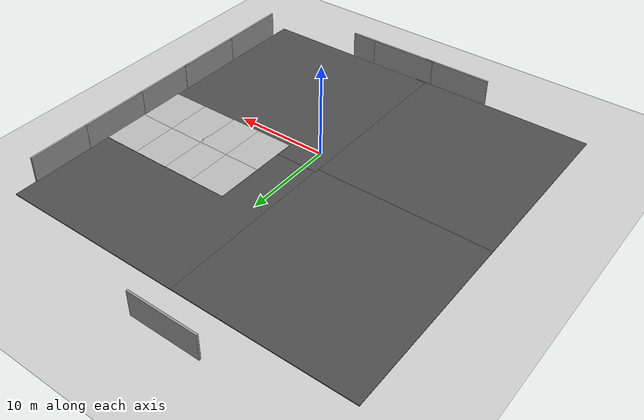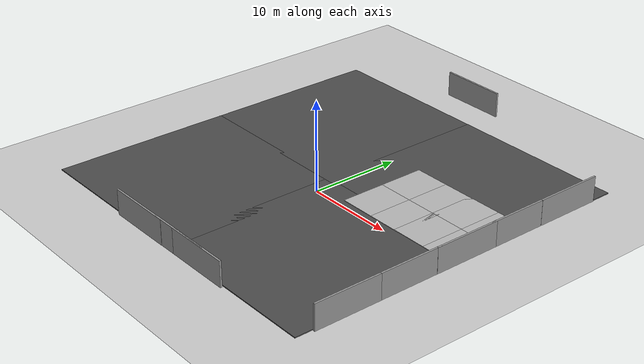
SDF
<sdf version="1.6">
 <world name="default">
  <model name="ground_plane">
   <static>1</static>
   <link name="link">
    <collision name="collision">
     <geometry><plane><normal>0 0 1</normal><size>100 100</size></plane></geometry>
     <surface><friction><ode><mu>100</mu><mu2>50</mu2></ode></friction></surface>
    </collision>
    <visual name="visual">
     <cast_shadows>0</cast_shadows>
     <geometry><plane><normal>0 0 1</normal><size>100 100</size></plane></geometry>
     <material>
      <script><uri>file://media/materials/scripts/gazebo.material</uri><name>Gazebo/Grey</name></script>
     </material>
    </visual>
   </link>
  </model>
  <model name="asphalt_plane">
   <static>1</static>
   <link name="link">
    <collision name="collision">
     <geometry><box><size>20 20 0.1</size></box></geometry>
     <surface><friction><ode><mu>100</mu><mu2>50</mu2></ode></friction></surface>
    </collision>
    <visual name="visual">
     <cast_shadows>0</cast_shadows>
     <geometry><box><size>20 20 0.1</size></box></geometry>
     <material>
      <script>
       <uri>model://asphalt_plane/materials/scripts</uri>
       <uri>model://asphalt_plane/materials/textures</uri>
       <name>vrc/asphalt</name>
      </script>
     </material>
    </visual>
   </link>
   <pose>-10.1692 -7.43707 0 0 -0 0</pose>
  </model>
  <model name="asphalt_plane_clone">
   <static>1</static>
   <link name="link">
    <collision name="collision">
     <geometry><box><size>20 20 0.1</size></box></geometry>
     <surface><friction><ode><mu>100</mu><mu2>50</mu2></ode></friction></surface>
    </collision>
    <visual name="visual">
     <cast_shadows>0</cast_shadows>
     <geometry><box><size>20 20 0.1</size></box></geometry>
     <material>
      <script>
       <uri>model://asphalt_plane/materials/scripts</uri>
       <uri>model://asphalt_plane/materials/textures</uri>
       <name>vrc/asphalt</name>
      </script>
     </material>
    </visual>
   </link>
   <pose>-10.1603 12.171 0 0 -0 0</pose>
  </model>
  <model name="asphalt_plane_clone_clone">
   <static>1</static>
   <link name="link">
    <collision name="collision">
     <geometry><box><size>20 20 0.1</size></box></geometry>
     <surface><friction><ode><mu>100</mu><mu2>50</mu2></ode></friction></surface>
    </collision>
    <visual name="visual">
     <cast_shadows>0</cast_shadows>
     <geometry><box><size>20 20 0.1</size></box></geometry>
     <material>
      <script>
       <uri>model://asphalt_plane/materials/scripts</uri>
       <uri>model://asphalt_plane/materials/textures</uri>
       <name>vrc/asphalt</name>
      </script>
     </material>
    </visual>
   </link>
   <pose>8.71597 12.1785 0 0 -0 0</pose>
  </model>
  <model name="asphalt_plane_clone_clone_0">
   <static>1</static>
   <link name="link">
    <collision name="collision">
     <geometry><box><size>20 20 0.1</size></box></geometry>
     <surface><friction><ode><mu>100</mu><mu2>50</mu2></ode></friction></surface>
    </collision>
    <visual name="visual">
     <cast_shadows>0</cast_shadows>
     <geometry><box><size>20 20 0.1</size></box></geometry>
     <material>
      <script>
       <uri>model://asphalt_plane/materials/scripts</uri>
       <uri>model://asphalt_plane/materials/textures</uri>
       <name>vrc/asphalt</name>
      </script>
     </material>
    </visual>
   </link>
   <pose>8.60996 -7.34898 0 0 -0 0</pose>
  </model>
  <model name="grey_wall">
   <static>1</static>
   <link name="link">
    <pose>0 0 1.4 0 -0 0</pose>
    <collision name="collision"><geometry><box><size>7.5 0.2 2.8</size></box></geometry></collision>
    <visual name="visual">
     <cast_shadows>0</cast_shadows>
     <geometry><box><size>7.5 0.2 2.8</size></box></geometry>
     <material>
      <script>
       <uri>model://grey_wall/materials/scripts</uri>
       <uri>model://grey_wall/materials/textures</uri>
       <name>vrc/grey_wall</name>
      </script>
     </material>
    </visual>
   </link>
   <pose>-4.8114 -17.6626 0 0 -0 0</pose>
  </model>
  <model name="grey_wall_clone">
   <static>1</static>
   <link name="link">
    <pose>0 0 1.4 0 -0 0</pose>
    <collision name="collision"><geometry><box><size>7.5 0.2 2.8</size></box></geometry></collision>
    <visual name="visual">
     <cast_shadows>0</cast_shadows>
     <geometry><box><size>7.5 0.2 2.8</size></box></geometry>
     <material>
      <script>
       <uri>model://grey_wall/materials/scripts</uri>
       <uri>model://grey_wall/materials/textures</uri>
       <name>vrc/grey_wall</name>
      </script>
     </material>
    </visual>
   </link>
   <pose>1.84642 -17.6367 0 0 -0 0</pose>
  </model>
  <model name="grey_wall_clone_0">
   <static>1</static>
   <link name="link">
    <pose>0 0 1.4 0 -0 0</pose>
    <collision name="collision"><geometry><box><size>7.5 0.2 2.8</size></box></geometry></collision>
    <visual name="visual">
     <cast_shadows>0</cast_shadows>
     <geometry><box><size>7.5 0.2 2.8</size></box></geometry>
     <material>
      <script>
       <uri>model://grey_wall/materials/scripts</uri>
       <uri>model://grey_wall/materials/textures</uri>
       <name>vrc/grey_wall</name>
      </script>
     </material>
    </visual>
   </link>
   <pose>4.62088 -17.6372 0 0 -0 0</pose>
  </model>
  <model name="grey_wall_clone_clone">
   <static>1</static>
   <link name="link">
    <pose>0 0 1.4 0 -0 0</pose>
    <collision name="collision"><geometry><box><size>7.5 0.2 2.8</size></box></geometry></collision>
    <visual name="visual">
     <cast_shadows>0</cast_shadows>
     <geometry><box><size>7.5 0.2 2.8</size></box></geometry>
     <material>
      <script>
       <uri>model://grey_wall/materials/scripts</uri>
       <uri>model://grey_wall/materials/textures</uri>
       <name>vrc/grey_wall</name>
      </script>
     </material>
    </visual>
   </link>
   <pose>-4.48764 26.0166 0 0 -0 0</pose>
  </model>
  <model name="grey_wall_clone_clone_clone">
   <static>1</static>
   <link name="link">
    <pose>0 0 1.4 0 -0 0</pose>
    <collision name="collision"><geometry><box><size>7.5 0.2 2.8</size></box></geometry></collision>
    <visual name="visual">
     <cast_shadows>0</cast_shadows>
     <geometry><box><size>7.5 0.2 2.8</size></box></geometry>
     <material>
      <script>
       <uri>model://grey_wall/materials/scripts</uri>
       <uri>model://grey_wall/materials/textures</uri>
       <name>vrc/grey_wall</name>
      </script>
     </material>
    </visual>
   </link>
   <pose>18.7544 16.0387 0 0 0 -1.56734</pose>
  </model>
  <model name="grey_wall_clone_clone_clone_clone">
   <static>1</static>
   <link name="link">
    <pose>0 0 1.4 0 -0 0</pose>
    <collision name="collision"><geometry><box><size>7.5 0.2 2.8</size></box></geometry></collision>
    <visual name="visual">
     <cast_shadows>0</cast_shadows>
     <geometry><box><size>7.5 0.2 2.8</size></box></geometry>
     <material>
      <script>
       <uri>model://grey_wall/materials/scripts</uri>
       <uri>model://grey_wall/materials/textures</uri>
       <name>vrc/grey_wall</name>
      </script>
     </material>
    </visual>
   </link>
   <pose>18.767 9.41754 0 0 0 -1.56734</pose>
  </model>
  <model name="grey_wall_clone_clone_clone_clone_0">
   <static>1</static>
   <link name="link">
    <pose>0 0 1.4 0 -0 0</pose>
    <collision name="collision"><geometry><box><size>7.5 0.2 2.8</size></box></geometry></collision>
    <visual name="visual">
     <cast_shadows>0</cast_shadows>
     <geometry><box><size>7.5 0.2 2.8</size></box></geometry>
     <material>
      <script>
       <uri>model://grey_wall/materials/scripts</uri>
       <uri>model://grey_wall/materials/textures</uri>
       <name>vrc/grey_wall</name>
      </script>
     </material>
    </visual>
   </link>
   <pose>18.7963 2.45369 0 0 0 -1.56734</pose>
  </model>
  <model name="grey_wall_clone_clone_clone_clone_1">
   <static>1</static>
   <link name="link">
    <pose>0 0 1.4 0 -0 0</pose>
    <collision name="collision"><geometry><box><size>7.5 0.2 2.8</size></box></geometry></collision>
    <visual name="visual">
     <cast_shadows>0</cast_shadows>
     <geometry><box><size>7.5 0.2 2.8</size></box></geometry>
     <material>
      <script>
       <uri>model://grey_wall/materials/scripts</uri>
       <uri>model://grey_wall/materials/textures</uri>
       <name>vrc/grey_wall</name>
      </script>
     </material>
    </visual>
   </link>
   <pose>18.8058 -4.41342 0 0 0 -1.56734</pose>
  </model>
  <model name="grey_wall_clone_clone_clone_clone_2">
   <static>1</static>
   <link name="link">
    <pose>0 0 1.4 0 -0 0</pose>
    <collision name="collision"><geometry><box><size>7.5 0.2 2.8</size></box></geometry></collision>
    <visual name="visual">
     <cast_shadows>0</cast_shadows>
     <geometry><box><size>7.5 0.2 2.8</size></box></geometry>
     <material>
      <script>
       <uri>model://grey_wall/materials/scripts</uri>
       <uri>model://grey_wall/materials/textures</uri>
       <name>vrc/grey_wall</name>
      </script>
     </material>
    </visual>
   </link>
   <pose>18.8343 -11.7301 0 0 0 -1.56734</pose>
  </model>
  <model name="mud_box">
   <static>1</static>
   <link name="link">
    <collision name="collision"><geometry><box><size>8 10 0.2</size></box></geometry></collision>
    <visual name="visual_1">
     <pose>-2 2.5 0 0 -0 0</pose>
     <cast_shadows>0</cast_shadows>
     <geometry><box><size>4 5 0.2</size></box></geometry>
     <material>
      <script>
       <uri>model://mud_box/materials/scripts</uri>
       <uri>model://mud_box/materials/textures</uri>
       <name>vrc/mud</name>
      </script>
     </material>
    </visual>
    <visual name="visual_2">
     <pose>2 2.5 0 0 -0 0</pose>
     <cast_shadows>0</cast_shadows>
     <geometry><box><size>4 5 0.2</size></box></geometry>
     <material>
      <script>
       <uri>model://mud_box/materials/scripts</uri>
       <uri>model://mud_box/materials/textures</uri>
       <name>vrc/mud</name>
      </script>
     </material>
    </visual>
    <visual name="visual_3">
     <pose>2 -2.5 0 0 -0 0</pose>
     <cast_shadows>0</cast_shadows>
     <geometry><box><size>4 5 0.2</size></box></geometry>
     <material>
      <script>
       <uri>model://mud_box/materials/scripts</uri>
       <uri>model://mud_box/materials/textures</uri>
       <name>vrc/mud</name>
      </script>
     </material>
    </visual>
    <visual name="visual_4">
     <pose>-2 -2.5 0 0 -0 0</pose>
     <cast_shadows>0</cast_shadows>
     <geometry><box><size>4 5 0.2</size></box></geometry>
     <material>
      <script>
       <uri>model://mud_box/materials/scripts</uri>
       <uri>model://mud_box/materials/textures</uri>
       <name>vrc/mud</name>
      </script>
     </material>
    </visual>
   </link>
   <pose>14.6137 5.86275 0 0 -0 0</pose>
  </model>
  <model name="mud_box_clone">
   <static>1</static>
   <link name="link">
    <collision name="collision"><geometry><box><size>8 10 0.2</size></box></geometry></collision>
    <visual name="visual_1">
     <pose>-2 2.5 0 0 -0 0</pose>
     <cast_shadows>0</cast_shadows>
     <geometry><box><size>4 5 0.2</size></box></geometry>
     <material>
      <script>
       <uri>model://mud_box/materials/scripts</uri>
       <uri>model://mud_box/materials/textures</uri>
       <name>vrc/mud</name>
      </script>
     </material>
    </visual>
    <visual name="visual_2">
     <pose>2 2.5 0 0 -0 0</pose>
     <cast_shadows>0</cast_shadows>
     <geometry><box><size>4 5 0.2</size></box></geometry>
     <material>
      <script>
       <uri>model://mud_box/materials/scripts</uri>
       <uri>model://mud_box/materials/textures</uri>
       <name>vrc/mud</name>
      </script>
     </material>
    </visual>
    <visual name="visual_3">
     <pose>2 -2.5 0 0 -0 0</pose>
     <cast_shadows>0</cast_shadows>
     <geometry><box><size>4 5 0.2</size></box></geometry>
     <material>
      <script>
       <uri>model://mud_box/materials/scripts</uri>
       <uri>model://mud_box/materials/textures</uri>
       <name>vrc/mud</name>
      </script>
     </material>
    </visual>
    <visual name="visual_4">
     <pose>-2 -2.5 0 0 -0 0</pose>
     <cast_shadows>0</cast_shadows>
     <geometry><box><size>4 5 0.2</size></box></geometry>
     <material>
      <script>
       <uri>model://mud_box/materials/scripts</uri>
       <uri>model://mud_box/materials/textures</uri>
       <name>vrc/mud</name>
      </script>
     </material>
    </visual>
   </link>
   <pose>7.23773 5.83307 0 0 -0 0</pose>
  </model>
  <light name="sun" type="directional">
   <pose>0 0 10 0 -0 0</pose>
   <diffuse>0.8 0.8 0.8 1</diffuse>
   <specular>0.2 0.2 0.2 1</specular>
   <attenuation>
    <range>1000</range>
    <constant>0.9</constant>
    <linear>0.01</linear>
    <quadratic>0.001</quadratic>
   </attenuation>
   <direction>-0.5 0.1 -0.9</direction>
  </light>
  <gravity>0 0 -9.8</gravity>
  <magnetic_field>6e-06 2.3e-05 -4.2e-05</magnetic_field>
  <atmosphere type="adiabatic"/>
  <physics name="default_physics" default="0" type="ode">
   <max_step_size>0.001</max_step_size>
   <real_time_factor>1</real_time_factor>
   <real_time_update_rate>1000</real_time_update_rate>
  </physics>
  <scene><ambient>0.4 0.4 0.4 1</ambient><background>0.7 0.7 0.7 1</background><shadows>1</shadows></scene>
  <audio><device>default</device></audio>
  <spherical_coordinates>
   <surface_model>EARTH_WGS84</surface_model>
   <latitude_deg>47.840640</latitude_deg>
   <longitude_deg>10.619944</longitude_deg>
   <elevation>740.0</elevation>
   <heading_deg>180</heading_deg>
  </spherical_coordinates>
  <include><pose>0.0 0.0 1 0.0 0.0 0.0</pose><uri>model://adiona_description</uri></include>
 </world>
</sdf>

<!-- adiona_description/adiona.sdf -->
<sdf version="1.5">
  <model name="adiona">
  <static>false</static>

  <!-- ****************** ROBOT BASE FOOTPRINT ***************************  -->
  <pose>0.0 0.0 0.0 0.0 0.0 0.0</pose>
  <link name="base_footprint"/>

  <!-- ********************** ROBOT BASE *********************************  -->
  <link name="base_link">

    <collision name="base_collision">
      <pose>0 0 0.055 0 0 0</pose>
      <geometry>
        <box>
          <size>0 0 0.055 0 0 0</size>
        </box>
      </geometry>
    </collision>

    <visual name="base_visual">
     <pose>0 0 0.055 0 0 0</pose>
      <geometry>
      	<box>
          <size>0.2 0.09 0.06</size>
        </box>
       </geometry>
    </visual>
  </link>

  <!-- *********************** IMU SENSOR SETUP **************************  -->
  <link name="imu_link">
    <gravity>true</gravity>
    <sensor name="bmb_imu" type="imu">
      <always_on>true</always_on>
      <update_rate>100</update_rate>
      <visualize>true</visualize>
      <imu>
        <orientation>
          <x>
            <noise type="gaussian">
              <mean>0.0</mean>
              <stddev>2e-3</stddev>
            </noise>
          </x>
          <y>
            <noise type="gaussian">
              <mean>0.0</mean>
              <stddev>2e-3</stddev>
            </noise>
          </y>
          <z>
            <noise type="gaussian">
              <mean>0.0</mean>
              <stddev>2e-3</stddev>
            </noise>
          </z>
        </orientation>
        <angular_velocity>
          <x>
            <noise type="gaussian">
              <mean>0.0</mean>
              <stddev>2e-4</stddev>
            </noise>
          </x>
          <y>
            <noise type="gaussian">
              <mean>0.0</mean>
              <stddev>2e-4</stddev>
            </noise>
          </y>
          <z>
            <noise type="gaussian">
              <mean>0.0</mean>
              <stddev>2e-4</stddev>
            </noise>
          </z>
        </angular_velocity>
        <linear_acceleration>
          <x>
            <noise type="gaussian">
              <mean>0.0</mean>
              <stddev>1.7e-2</stddev>
            </noise>
          </x>
          <y>
            <noise type="gaussian">
              <mean>0.0</mean>
              <stddev>1.7e-2</stddev>
            </noise>
          </y>
          <z>
            <noise type="gaussian">
              <mean>0.0</mean>
              <stddev>1.7e-2</stddev>
            </noise>
          </z>
        </linear_acceleration>
      </imu>
      <plugin name="basic_mobile_bot_imu" filename="libgazebo_ros_imu_sensor.so">
        <initial_orientation_as_reference>false</initial_orientation_as_reference>
        <frame_name>imu_link</frame_name>
        <ros>
          <namespace>/imu</namespace>
          <remapping>~/out:=data</remapping>
        </ros>
      </plugin>
    </sensor>
  </link>

  <!-- *********************** GPS SETUP *********************************  -->
  <link name="gps_link">
    <sensor name="bmb_gps" type="gps">
      <always_on>true</always_on>
      <update_rate>10.0</update_rate>
      <gps>
        <position_sensing>
          <horizontal>
            <noise type="gaussian">
              <mean>0.0</mean>
              <stddev>1e-2</stddev>
            </noise>
          </horizontal>
          <vertical>
            <noise type="gaussian">
              <mean>0.0</mean>
              <stddev>1</stddev>
            </noise>
          </vertical>
        </position_sensing>
      </gps>
      <plugin name="basic_mobile_bot_gps" filename="libgazebo_ros_gps_sensor.so">
        <ros>
          <remapping>~/out:=gps/fix</remapping>
        </ros>
      </plugin>
    </sensor>
  </link>

  <!-- *********************** DEPTH CAMERA ******************************  -->
	<!-- The depth camera (e.g. Intel Realsense camera). -->
	<link name="camera_depth_frame">
	  <pose>0.12 0 0.65 -1.5708 0 -1.5708</pose>
	</link>

	<link name="camera_link">
	  <pose>0.12 0 0.056 0 0 0</pose>

	  <visual name="camera_visual">
	    <pose>-0.005 0 0 0 0 0</pose>
	    <geometry>
	      <box>
		<size>0.015 0.08 0.022</size>
	      </box>
	    </geometry>
	    <material>
	      <ambient>0 0 0 1.0</ambient>
	      <diffuse>0 0 0 1.0</diffuse>
	      <specular>0.0 0.0 0.0 1.0</specular>
	      <emissive>0.0 0.0 0.0 1.0</emissive>
	    </material>
	  </visual>

	  <sensor name="depth_camera" type="camera">
	    <always_on>true</always_on>
	    <visualize>false</visualize>
	    <update_rate>5</update_rate>
	    <camera name="camera">
	      <horizontal_fov>1.02974</horizontal_fov>
	      <image>
		<width>640</width>
		<height>480</height>
		<format>R8G8B8</format>
	      </image>
	      <clip>
		<near>0.02</near>
		<far>10</far>
	      </clip>
	      <noise>
		<type>gaussian</type>
		<!-- Noise is sampled independently per pixel on each frame.
		     That pixel's noise value is added to each of its color
		      channels, which at that point lie in the range [0,1]. -->
		<mean>0.0</mean>
		<stddev>0.007</stddev>
	      </noise>
	    </camera>
	    <plugin name="depth_camera_controller" filename="libgazebo_ros_camera.so">
	      <camera_name>depth_camera</camera_name>
	      <frame_name>camera_depth_frame</frame_name>
	      <hack_baseline>0</hack_baseline>
	      <min_depth>0.001</min_depth>
	    </plugin>
	  </sensor>
	</link>

  <!-- ****************************** LIDAR *****************************    -->
  <link name="lidar_link">
    <inertial>
      <pose>0.13 0 0.10 0 0 0</pose>
      <inertia>
        <ixx>0.001</ixx>
        <ixy>0.000</ixy>
        <ixz>0.000</ixz>
        <iyy>0.001</iyy>
        <iyz>0.000</iyz>
        <izz>0.001</izz>
      </inertia>
      <mass>0.114</mass>
    </inertial>

    <collision name="lidar_collision">
      <pose>0 0 0.1 0 0 0</pose>
      <geometry>
        <cylinder>
          <radius>0.0508</radius>
          <length>0.18</length>
        </cylinder>
      </geometry>
    </collision>

    <visual name="lidar_visual">
      <pose>0 0 0.1 0 0 0</pose>
      <geometry>
        <cylinder>
          <radius>0.02</radius>
          <length>0.02</length>
        </cylinder>
      </geometry>
      <material>
        <ambient>0.0 0.0 0.0 1.0</ambient>
        <diffuse>0.0 0.0 0.0 1.0</diffuse>
        <specular>0.0 0.0 0.0 1.0</specular>
        <emissive>0.0 0.0 0.0 1.0</emissive>
      </material>
    </visual>

    <sensor name="lidar" type="ray">
      <pose>0 0 0.1 0 0 0</pose>
      <always_on>true</always_on>
      <visualize>false</visualize>
      <update_rate>5</update_rate>
      <ray>
        <scan>
          <horizontal>
            <samples>8000</samples>
            <resolution>1.000000</resolution>
            <min_angle>-3.14159</min_angle>
            <max_angle>3.14159</max_angle>
          </horizontal>
        </scan>
        <range>
          <min>0.3</min>
          <max>15.0</max>
          <resolution>0.015</resolution>
        </range>
        <noise>
          <type>gaussian</type>
          <mean>0.0</mean>
          <stddev>0.01</stddev>
        </noise>
      </ray>
      <plugin name="scan" filename="libgazebo_ros_ray_sensor.so">
        <ros>
          <remapping>~/out:=scan</remapping>
        </ros>
        <output_type>sensor_msgs/LaserScan</output_type>
        <frame_name>lidar_link</frame_name>
      </plugin>
    </sensor>
  </link>

  <!-- *********************** DRIVE WHEELS ******************************  -->

  <link name="r_drivewhl_l_link">
    <pose>-0.2 0.15 -0.05 0 1.570796 1.570796</pose>

    <collision name="r_drivewhl_l_collision">
      <geometry>
        <cylinder>
          <radius>0.035</radius>
          <length>0.03</length>
        </cylinder>
      </geometry>
    </collision>

    <visual name="r_drivewhl_l_visual">
      <geometry>
        <cylinder>
          <radius>0.035</radius>
          <length>0.03</length>
        </cylinder>
      </geometry>
    </visual>
  </link>

  <link name="r_drivewhl_r_link">
    <pose>-0.2 -0.15 -0.05 0 1.570796 1.570796</pose>

    <collision name="r_drivewhl_r_collision">
      <geometry>
        <cylinder>
          <radius>0.035</radius>
          <length>0.03</length>
        </cylinder>
      </geometry>
    </collision>

    <visual name="r_drivewhl_r_visual">
      <geometry>
        <cylinder>
          <radius>0.035</radius>
          <length>0.03</length>
        </cylinder>
      </geometry>
    </visual>
  </link>

    <link name="f_drivewhl_l_link">
    <pose>0.2 0.15 -0.05 0 1.570796 1.570796</pose>

    <collision name="f_drivewhl_l_collision">
      <geometry>
        <cylinder>
          <radius>0.035</radius>
          <length>0.03</length>
        </cylinder>
      </geometry>
    </collision>

    <visual name="f_drivewhl_l_visual">
      <geometry>
        <cylinder>
          <radius>0.035</radius>
          <length>0.03</length>
        </cylinder>
      </geometry>
    </visual>
  </link>

    <link name="f_drivewhl_r_link">
    <pose>0.2 -0.15 -0.05 0 1.570796 1.570796</pose>

    <collision name="f_drivewhl_r_collision">
      <geometry>
        <cylinder>
          <radius>0.035</radius>
          <length>0.03</length>
        </cylinder>
      </geometry>
    </collision>

    <visual name="f_drivewhl_r_visual">
      <geometry>
        <cylinder>
          <radius>0.035</radius>
          <length>0.03</length>
        </cylinder>
      </geometry>
    </visual>
  </link>

  <!-- ************************ JOINTS ***********************************  -->
  <!-- Pose of the joint is the same as the child link frame -->
  <!-- Axis is the axis of rotation relative to the child link frame -->

  <joint name="base_joint" type="fixed">
    <parent>base_footprint</parent>
    <child>base_link</child>
    <pose>0 0 0 0 0</pose>
  </joint>

  <joint name="r_drivewhl_l_joint" type="revolute">
    <parent>base_link</parent>
    <child>r_drivewhl_l_link</child>
    <pose>0 0 0 0 0 0</pose>
    <axis>
      <xyz>0 0 1</xyz>
    </axis>
  </joint>

  <joint name="r_drivewhl_r_joint" type="revolute">
    <parent>base_link</parent>
    <child>r_drivewhl_r_link</child>
    <pose>0 0 0 0 0 0</pose>
    <axis>
      <xyz>0 0 1</xyz>
    </axis>
  </joint>

   <joint name="f_drivewhl_l_joint" type="revolute">
    <parent>base_link</parent>
    <child>f_drivewhl_l_link</child>
    <pose>0 0 0 0 0 0</pose>
    <axis>
      <xyz>0 0 1</xyz>
    </axis>
  </joint>

   <joint name="f_drivewhl_r_joint" type="revolute">
    <parent>base_link</parent>
    <child>f_drivewhl_r_link</child>
    <pose>0 0 0 0 0 0</pose>
    <axis>
      <xyz>0 0 1</xyz>
    </axis>
  </joint>

   <joint name="lidar_joint" type="fixed">
    <parent>base_link</parent>
    <child>lidar_link</child>
    <pose>0 0 0 0 0 0</pose>
  </joint>

  <joint name="camera_joint" type="fixed">
    <parent>base_link</parent>
    <child>camera_link</child>
    <pose>0 0 0 0 0 0</pose>
  </joint>

  <joint name="imu_joint" type="fixed">
    <parent>base_link</parent>
    <child>imu_link</child>
    <pose>0 0 0 0 0 0</pose>
  </joint>

  <joint name="gps_joint" type="fixed">
    <parent>base_link</parent>
    <child>gps_link</child>
    <pose>0 0 0 0 0 0</pose>
  </joint>

 <!-- *********************** WHEEL ODOMETRY ***************************    -->
  <plugin name="basic_mobile_bot_diff_drive" filename="libgazebo_ros_diff_drive.so">

    <update_rate>30</update_rate>
    <num_wheel_pairs>2</num_wheel_pairs>
    <!-- wheels -->
    <left_joint>r_drivewhl_l_joint</left_joint>
    <right_joint>r_drivewhl_r_joint</right_joint>
    <left_joint>f_drivewhl_l_joint</left_joint>
    <right_joint>f_drivewhl_r_joint</right_joint>

    <!-- kinematics -->
    <wheel_separation>0.52</wheel_separation>
    <wheel_diameter>0.28</wheel_diameter>

    <!-- limits -->
    <max_wheel_torque>5</max_wheel_torque>
    <max_wheel_acceleration>1.0</max_wheel_acceleration>

    <!-- Receive velocity commands on this ROS topic -->
    <command_topic>cmd_vel</command_topic>

    <!-- output -->
    <!-- When false, publish no wheel odometry data to a ROS topic -->
    <publish_odom>true</publish_odom>

    <!-- When true, publish coordinate transform from odom to base_footprint -->
    <!-- I usually use the robot_localization package to publish this transform -->
    <publish_odom_tf>false</publish_odom_tf>

    <!-- When true, publish coordinate transform from base_link to the wheels -->
    <!-- The robot_state_publisher package is often used to publish this transform -->
    <publish_wheel_tf>false</publish_wheel_tf>

    <odometry_topic>odom</odometry_topic>
    <odometry_frame>odom</odometry_frame>
    <robot_base_frame>base_footprint</robot_base_frame>

    <!-- Odometry source, 0 for ENCODER, 1 for WORLD, defaults to WORLD -->
    <odometry_source>1</odometry_source>

    <!-- Change the ROS topic we will publish the odometry data to -->
    <ros>
      <remapping>odom:=wheel/odometry</remapping>
    </ros>

  </plugin>

 <!-- *********************** JOINT STATE PUBLISHER *********************   -->

  <plugin name="basic_mobile_bot_joint_state" filename="libgazebo_ros_joint_state_publisher.so">
    <ros>
      <remapping>~/out:=joint_states</remapping>
    </ros>
    <update_rate>30</update_rate>
    <joint_name>r_drivewhl_l_joint</joint_name>
    <joint_name>r_drivewhl_r_joint</joint_name>
    <joint_name>f_drivewhl_l_joint</joint_name>
    <joint_name>f_drivewhl_l_joint</joint_name>
  </plugin>

  </model>
</sdf>
